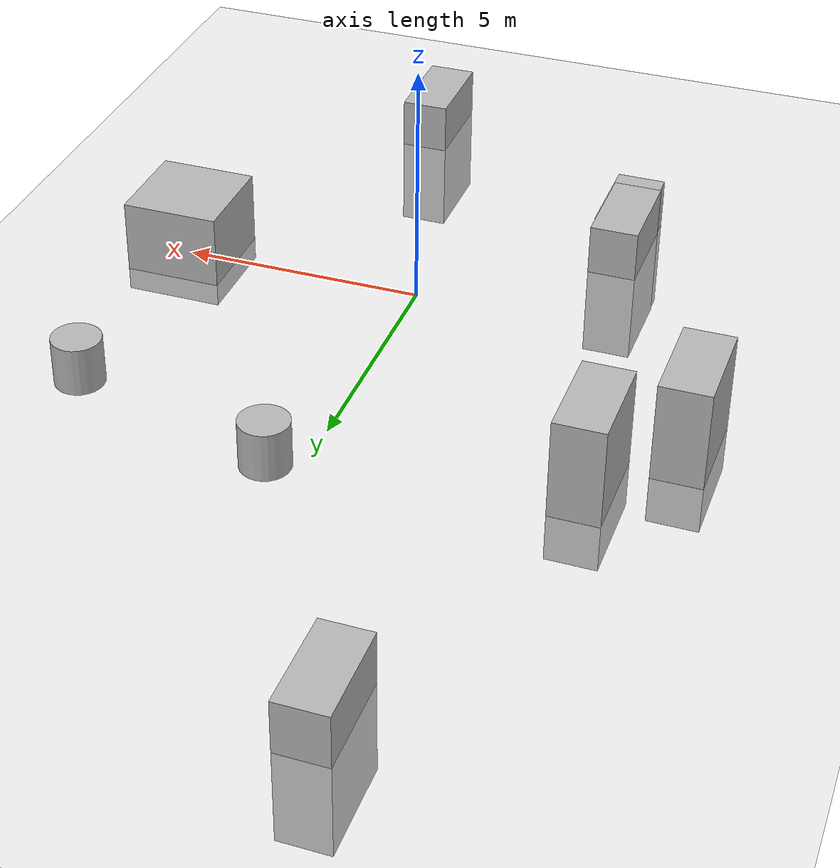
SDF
<?xml version="1.0" ?>
<sdf version="1.5">
    <world name="default">
        <gravity>0 0 -3.711</gravity>
        <model name="world_shapes" />
        <model name="ground">
            <static>true</static>
            <link name="link">
                <collision name="collision">
                    <geometry>
                        <plane>
                            <normal>0 0 1</normal>
                            <size>80 80</size>
                        </plane>
                    </geometry>
                    <surface>
                        <friction>
                            <ode>
                                <mu>100</mu>
                                <mu2>50</mu2>
                            </ode>
                        </friction>
                    </surface>
                </collision>
                <visual name="visual">
                    <cast_shadows>false</cast_shadows>
                    <geometry>
                        <plane>
                            <normal>0 0 1</normal>
                            <size>80 80</size>
                        </plane>
                    </geometry>
                    <material>
                        <script>
                            <uri>model://shapes/ground.material</uri>
                            <name>GroundFlat/Image</name>
                        </script>
                    </material>
                </visual>
            </link>
        </model>
        <include>
            <uri>model://sun</uri>
        </include>
        <model name="box">
            <static>true</static>
            <pose>5 0 0.5 0 0 0</pose>
            <link name="link">
                <collision name="collision">
                    <geometry>
                        <box>
                            <size>2 2 2</size>
                        </box>
                    </geometry>
                </collision>
                <visual name="visual">
                    <geometry>
                        <box>
                            <size>2 2 2</size>
                        </box>
                    </geometry>
                    <material>
                        <script>
                            <uri>model://shapes/rock.material</uri>
                            <name>RockFlat/Image</name>
                        </script>
                    </material>
                </visual>
            </link>
        </model>
        <model name='cylinder'>
            <static>true</static>
            <pose>0.6893 6.33695 0.5 0 -0 0</pose>
            <scale>1.45738 1.45738 1</scale>
            <static>true</static>
            <link name="link">
                <collision name="collision">
                    <geometry>
                        <cylinder>
                            <radius>0.5</radius>
                            <length>1.0</length>
                        </cylinder>
                    </geometry>
                </collision>
                <visual name="visual">
                    <geometry>
                        <cylinder>
                            <radius>0.5</radius>
                            <length>1.0</length>
                        </cylinder>
                    </geometry>
                    <material>
                        <script>
                            <uri>model://shapes/rock.material</uri>
                            <name>RockFlat/Image</name>
                        </script>
                    </material>
                </visual>
            </link>
        </model>
        <model name='cylinder2'>
            <static>true</static>
            <pose>5.073040 5.073040 0.5 0 -0 0</pose>
            <scale>1.45738 1.45738 1</scale>
            <static>true</static>
            <link name="link">
                <collision name="collision">
                    <geometry>
                        <cylinder>
                            <radius>0.5</radius>
                            <length>1.0</length>
                        </cylinder>
                    </geometry>
                </collision>
                <visual name="visual">
                    <geometry>
                        <cylinder>
                            <radius>0.5</radius>
                            <length>1.0</length>
                        </cylinder>
                    </geometry>
                    <material>
                        <script>
                            <uri>model://shapes/rock.material</uri>
                            <name>RockFlat/Image</name>
                        </script>
                    </material>
                </visual>
            </link>
        </model>
        <model name="box2">
            <static>true</static>
            <pose>-5 5 0.5 0 0 0</pose>
            <link name="link">
                <collision name="collision">
                    <geometry>
                        <box>
                            <size>1 2 3</size>
                        </box>
                    </geometry>
                </collision>
                <visual name="visual">
                    <geometry>
                        <box>
                            <size>1 2 3</size>
                        </box>
                    </geometry>
                    <material>
                        <script>
                            <uri>model://shapes/rock.material</uri>
                            <name>RockFlat/Image</name>
                        </script>
                    </material>
                </visual>
            </link>
        </model>
        <model name='box3'>
            <static>true</static>
            <pose>-6.44847 3.31816 0.5 0 -0 0</pose>
            <scale>1 0.424181 0.601928</scale>
            <link name="link">
                <collision name="collision">
                    <geometry>
                        <box>
                            <size>1 2 3</size>
                        </box>
                    </geometry>
                </collision>
                <visual name="visual">
                    <geometry>
                        <box>
                            <size>1 2 3</size>
                        </box>
                    </geometry>
                    <material>
                        <script>
                            <uri>model://shapes/rock.material</uri>
                            <name>RockFlat/Image</name>
                        </script>
                    </material>
                </visual>
            </link>
        </model>
        <model name='box4'>
            <static>true</static>
            <pose>-3.54315 -3.14319 -0.456862 0 -0 0</pose>
            <scale>1 0.461551 1</scale>
            <link name="link">
                <collision name="collision">
                    <geometry>
                        <box>
                            <size>1 2 3</size>
                        </box>
                    </geometry>
                </collision>
                <visual name="visual">
                    <geometry>
                        <box>
                            <size>1 2 3</size>
                        </box>
                    </geometry>
                    <material>
                        <script>
                            <uri>model://shapes/rock.material</uri>
                            <name>RockFlat/Image</name>
                        </script>
                    </material>
                </visual>
            </link>
        </model>
        <model name='box5'>
            <static>true</static>
            <pose>1.92795 -7.12328 -0.456862 0 -0 0</pose>
            <scale>1 1.88988 1</scale>
            <link name="link">
                <collision name="collision">
                    <geometry>
                        <box>
                            <size>1 2 3</size>
                        </box>
                    </geometry>
                </collision>
                <visual name="visual">
                    <geometry>
                        <box>
                            <size>1 2 3</size>
                        </box>
                    </geometry>
                    <material>
                        <script>
                            <uri>model://shapes/rock.material</uri>
                            <name>RockFlat/Image</name>
                        </script>
                    </material>
                </visual>
            </link>
        </model>
        <model name='box6'>
            <static>true</static>
            <pose>-3.527180 -3.527180 -0.456862 0 -0 0</pose>
            <scale>1 1.88988 1</scale>
            <link name="link">
                <collision name="collision">
                    <geometry>
                        <box>
                            <size>1 2 3</size>
                        </box>
                    </geometry>
                </collision>
                <visual name="visual">
                    <geometry>
                        <box>
                            <size>1 2 3</size>
                        </box>
                    </geometry>
                    <material>
                        <script>
                            <uri>model://shapes/rock.material</uri>
                            <name>RockFlat/Image</name>
                        </script>
                    </material>
                </visual>
            </link>
        </model>
        <model name='box7'>
            <static>true</static>
            <pose>-2.673782 12 -0.456862 0 -0 0</pose>
            <scale>1 1.88988 1</scale>
            <link name="link">
                <collision name="collision">
                    <geometry>
                        <box>
                            <size>1 2 3</size>
                        </box>
                    </geometry>
                </collision>
                <visual name="visual">
                    <geometry>
                        <box>
                            <size>1 2 3</size>
                        </box>
                    </geometry>
                    <material>
                        <script>
                            <uri>model://shapes/rock.material</uri>
                            <name>RockFlat/Image</name>
                        </script>
                    </material>
                </visual>
            </link>
        </model>
    </world>
</sdf>
